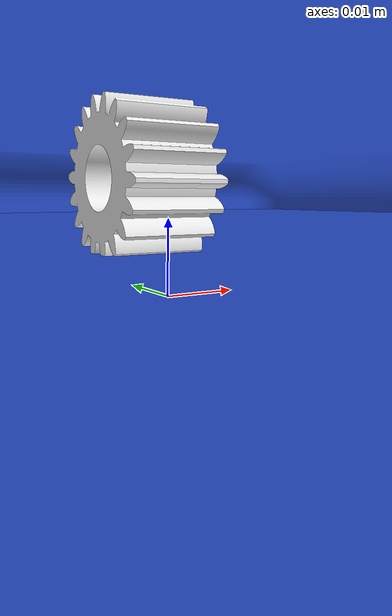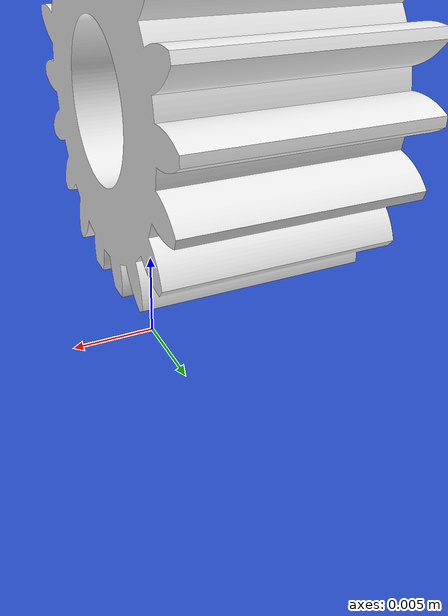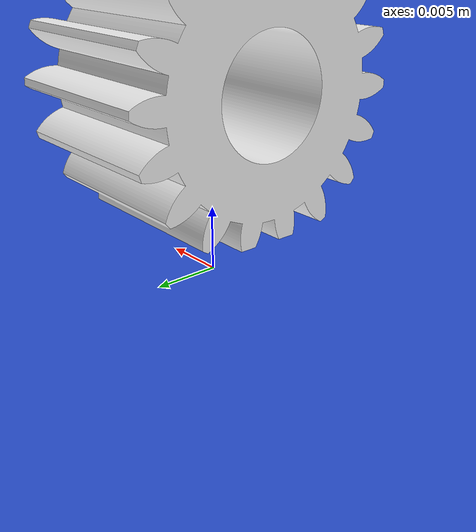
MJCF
<mujoco model="target">
  <compiler meshdir="assets" texturedir="assets" autolimits="true"/>
  <default>
    <default class="visual">
      <geom group="2" type="mesh" contype="0" conaffinity="0"/>
    </default>
    <default class="collision">
      <geom group="3" type="mesh"/>
    </default>
  </default>
  <asset>
    <texture type="skybox" name="white_background" builtin="flat" rgb1="1 1 1" rgb2="1 1 1" width="1"/>
    <texture type="2d" name="Woods &amp; Plastics.Finish Carpentry.Wood.White Oak" file="Woods &amp; Plastics.Finish Carpentry.Wood.White Oak.png"/>
    <material name="160,40,0" texture="Woods &amp; Plastics.Finish Carpentry.Wood.White Oak" specular="1.0" shininess="1.0"/>
    <texture type="2d" name="Furnishings.Fabrics.Denim.Blue" file="Furnishings.Fabrics.Denim.Blue.png"/>
    <material name="255,255,255" texture="Furnishings.Fabrics.Denim.Blue" specular="0.0" shininess="0.0"/>
    <mesh file="object_0.obj"/>
    <mesh file="object_1.obj"/>
  </asset>
  <worldbody>
    <body name="object">
      <geom mesh="object_0" material="255,255,255" class="visual"/>
      <geom mesh="object_1" material="160,40,0" class="visual"/>
      <geom mesh="object_0" class="collision"/>
      <geom mesh="object_1" class="collision"/>
    </body>
  </worldbody>
</mujoco>
